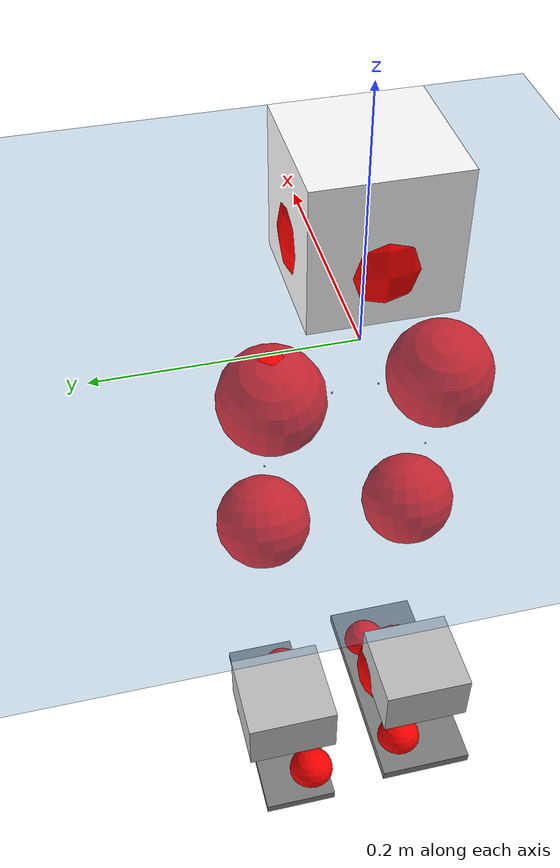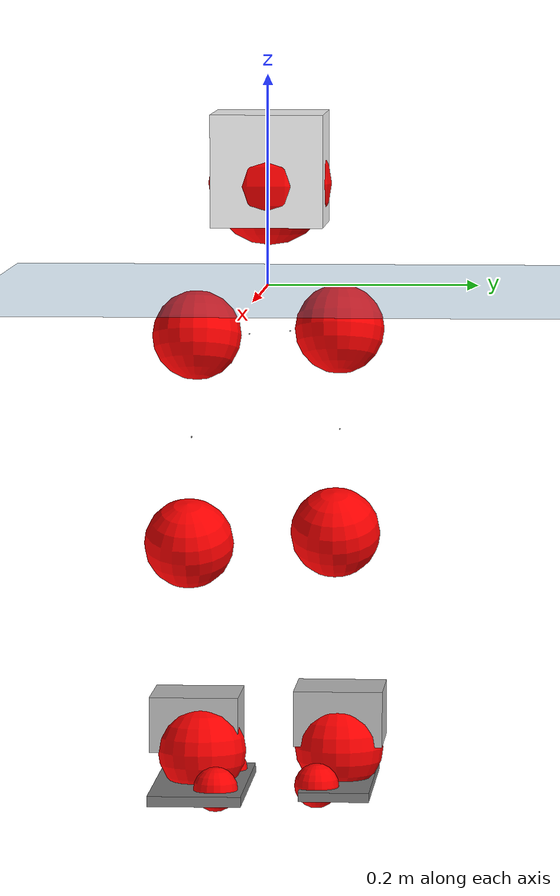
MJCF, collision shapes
<mujoco model="pi_12dof_release_v1">
  <compiler angle="radian" assetdir="assets" balanceinertia="true" inertiafromgeom="false"/>

  <option timestep="0.005" density="1.2" viscosity="2e-05"/>

  <size nkey="1"/>

  <visual>
    <quality shadowsize="8192"/>
    <map shadowclip="0.5"/>
  </visual>

  <default>
    <default class="/">
      <joint armature="0.01" damping="0.01" frictionloss="0.01"/>
      <geom contype="0" conaffinity="0" group="1" solref="-1000 -80"/>
      <site size="0.01 0.005 0.005" group="5"/>
      <general forcelimited="true" biastype="affine" gainprm="20" biasprm="0 -20 -0.5"/>
      <default class="foot">
        <geom size="0.0845 0.036 0.005" type="box" condim="6" group="4" priority="1" friction="0.9 0.2 0.2" solimp="0.015 1 0.005"/>
      </default>
      <default class="reward_collision_sphere">
        <geom group="5" rgba="1 0 0 1"/>
      </default>
    </default>
  </default>

  <asset>
    <texture type="skybox" colorspace="auto" name="//unnamed_texture_0" builtin="gradient" rgb1="0.95 0.95 0.95" rgb2="0.95 0.95 0.95" width="100" height="600"/>
    <texture type="2d" colorspace="auto" name="texplane" builtin="checker" rgb1="0.345 0.575 0.748" rgb2="0.345 0.575 0.748" markrgb="1 1 1" width="512" height="512"/>
    <material name="MatPlane" class="/" texture="texplane" texuniform="true" texrepeat="2 2" specular="0.9"/>
    <mesh name="baselink_1" class="/" file="baselink_1.STL"/>
    <mesh name="r_hip_pitch_link" class="/" file="r_hip_pitch_link.STL"/>
    <mesh name="r_hip_roll_link" class="/" file="r_hip_roll_link.STL"/>
    <mesh name="r_thigh_link" class="/" file="r_thigh_link.STL"/>
    <mesh name="r_calf_link" class="/" file="r_calf_link.STL"/>
    <mesh name="r_ankle_pitch_link" class="/" file="r_ankle_pitch_link.STL"/>
    <mesh name="r_ankle_roll_link" class="/" file="r_ankle_roll_link.STL"/>
    <mesh name="l_hip_pitch_link" class="/" file="l_hip_pitch_link.STL"/>
    <mesh name="l_hip_roll_link" class="/" file="l_hip_roll_link.STL"/>
    <mesh name="l_thigh_link" class="/" file="l_thigh_link.STL"/>
    <mesh name="l_calf_link" class="/" file="l_calf_link.STL"/>
    <mesh name="l_ankle_pitch_link" class="/" file="l_ankle_pitch_link.STL"/>
    <mesh name="l_ankle_roll_link" class="/" file="l_ankle_roll_link.STL"/>
  </asset>

  <worldbody>
    <geom name="floor" class="/" size="100 100 0.125" type="plane" group="0" material="MatPlane"/>
    <light name="toplight_shadow" class="/" pos="0 0 5" dir="0.0990148 0.0990148 -0.990148" type="directional" ambient="0.04 0.04 0.04" diffuse="0.55 0.55 0.55" specular="0.12 0.12 0.12"/>
    <light name="toplight_fill" class="/" pos="0 0 5" dir="0.0990148 0.0990148 -0.990148" type="directional" castshadow="false" ambient="0.04 0.04 0.04" diffuse="0.3 0.3 0.3" specular="0.08 0.08 0.08"/>
    <body name="trunk" pos="0.000245499 0.00201447 -0.00152734" quat="1 -7.20532e-05 0.000108514 -0.000219391">
      <inertial pos="0.000821348 0.000771791 0.0576784" quat="0.698636 0.0135234 0.00628639 0.715321" mass="2.69039" diaginertia="0.00583984 0.00494159 0.021747"/>
      <joint name="//unnamed_joint_0" type="free"/>
      <geom name="//unnamed_geom_1" class="/" type="mesh" density="0" rgba="1 1 1 1" mesh="baselink_1"/>
      <geom name="//unnamed_geom_2" class="/" size="0.0532549 0.0532549 0.0532549" pos="0 0 0.112122" type="box" rgba="1 1 1 1"/>
      <geom name="//unnamed_geom_3" class="reward_collision_sphere" size="0.0585804" pos="0 0 0.0981068"/>
      <site name="imu" class="/" pos="0.00580397 0.0236787 -0.0118519" size="0.010651"/>
      <camera name="track" class="/" pos="0 -1.77421 0" quat="0.707107 0.707107 0 0" mode="trackcom"/>
      <camera name="ego_camera" class="/" pos="0.0679995 0 0.252275" quat="-0.5 -0.5 0.5 0.5"/>
      <body name="r_hip_pitch_link" pos="0.00131551 -0.0195288 -0.0456487" quat="0.991934 -0.000157713 -0.126751 0.00067607">
        <inertial pos="-0.000633802 -0.0503652 -0.00151077" quat="-0.0197376 0.704855 -0.0295647 0.70846" mass="0.429508" diaginertia="6.40392e-05 5.12609e-05 0.000439371"/>
        <joint name="r_hip_pitch_joint" class="/" pos="0 0 0" axis="0.00680122 -0.999974 0.00239097" stiffness="0.0141201" range="-1.75858 1.2761" armature="0.00998671" damping="0.0338133" frictionloss="0.0120246"/>
        <geom name="//unnamed_geom_4" class="/" type="mesh" density="0" rgba="0.75294 0.75294 0.75294 1" mesh="r_hip_pitch_link"/>
        <geom name="//unnamed_geom_5" class="/" size="0.000532549 0.000532549 0.000532549" type="box" rgba="0.75294 0.75294 0.75294 1"/>
        <body name="r_hip_roll_link" pos="0.0013712 -0.0502919 -0.00162176" quat="1 6.94889e-05 -0.000230336 -6.16875e-05">
          <inertial pos="-0.000803682 0.0031226 -0.0805795" quat="0.701614 -0.0684826 -0.0852017 0.704122" mass="0.458511" diaginertia="0.000211741 0.000151303 0.000719389"/>
          <joint name="r_hip_roll_joint" class="/" pos="0 0 0" axis="-0.999999 0.00164383 9.94294e-05" range="-0.0846663 0.441273" armature="0.0120389" damping="0" frictionloss="0.00932379"/>
          <geom name="//unnamed_geom_6" class="/" type="mesh" density="0" rgba="0.75294 0.75294 0.75294 1" mesh="r_hip_roll_link"/>
          <geom name="//unnamed_geom_7" class="/" size="0.000532549 0.000532549 0.000532549" type="box" rgba="0.75294 0.75294 0.75294 1"/>
          <geom name="//unnamed_geom_8" class="reward_collision_sphere" size="0.0426039"/>
          <body name="r_thigh_link" pos="-0.00520644 -0.00357535 -0.0973533" quat="1 1.95201e-07 0.000264404 0.00054302">
            <inertial pos="-0.00186316 -0.000135189 -0.0665245" quat="0.737723 0.675102 -0.0015688 -0.000642895" mass="0.13036" diaginertia="7.60394e-05 5.00156e-05 0.00030999"/>
            <joint name="r_thigh_joint" class="/" pos="0 0 0" axis="-0.00289205 -0.00141906 -0.999995" range="-0.251349 0.628915" armature="0.0119936" damping="0.00112938" frictionloss="0.01321"/>
            <geom name="//unnamed_geom_9" class="/" type="mesh" density="0" rgba="0.75294 0.75294 0.75294 1" mesh="r_thigh_link"/>
            <geom name="//unnamed_geom_10" class="/" size="0.000532549 0.000532549 0.000532549" type="box" rgba="0.75294 0.75294 0.75294 1"/>
            <body name="r_calf_link" pos="0.00179636 -0.000466887 -0.102117" quat="0.94764 1.94651e-05 0.319342 4.91279e-05">
              <inertial pos="-0.00338378 -0.00101732 -0.0984909" quat="0.999925 0.011912 -6.88372e-05 0.00275249" mass="0.946582" diaginertia="0.00202791 0.00188813 0.000929689"/>
              <joint name="r_calf_joint" class="/" pos="0 0 0" axis="0.00961672 -0.999889 0.0113811" stiffness="0.0131423" range="-1.70751 0.638918" armature="0.0112156" damping="0.0180207" frictionloss="0.0108606"/>
              <geom name="//unnamed_geom_11" class="/" type="mesh" density="0" rgba="0.75294 0.75294 0.75294 1" mesh="r_calf_link"/>
              <geom name="//unnamed_geom_12" class="/" size="0.000532549 0.000532549 0.000532549" type="box" rgba="0.75294 0.75294 0.75294 1"/>
              <geom name="//unnamed_geom_13" class="reward_collision_sphere" size="0.0426039"/>
              <body name="r_ankle_pitch_link" pos="0.00166201 0.00130832 -0.194745" quat="0.980003 0.000493682 -0.198978 -0.0012961">
                <inertial pos="0.00544232 0.00308257 0.00352202" quat="0.0120495 0.698186 -0.0215819 0.71549" mass="0.210174" diaginertia="0.000177524 0.000116751 0.000620977"/>
                <joint name="r_ankle_pitch_joint" class="/" pos="0 0 0" axis="0.00881522 -0.999942 -0.00626035" stiffness="0.00843797" range="-1.30889 0.416805" armature="0.0108175" damping="0.0109632" frictionloss="0.00952532"/>
                <geom name="//unnamed_geom_14" class="/" type="mesh" density="0" rgba="0.75294 0.75294 0.75294 1" mesh="r_ankle_pitch_link"/>
                <geom name="//unnamed_geom_15" class="/" size="0.0415388 0.0426039 0.0266274" type="box" rgba="0.75294 0.75294 0.75294 1"/>
                <body name="r_ankle_roll_link" pos="0.0728668 0.00689967 0.00232316" quat="1 0.00071972 -0.00023761 0.000254007">
                  <inertial pos="-0.0198999 8.20174e-05 -0.0253391" quat="0.56279 0.42989 0.437174 0.554383" mass="0.673837" diaginertia="0.000756722 0.000568098 0.00168359"/>
                  <joint name="r_ankle_roll_joint" class="/" pos="0 0 0" axis="-0.999908 0.0126173 0.00502176" stiffness="0.00841676" range="-0.146717 0.194382" armature="0.0125022" damping="0" frictionloss="0.0100218"/>
                  <geom name="//unnamed_geom_16" class="/" type="mesh" density="0" rgba="0.75294 0.75294 0.75294 1" mesh="r_ankle_roll_link"/>
                  <geom name="//unnamed_geom_17" class="/" type="mesh" rgba="0.75294 0.75294 0.75294 1" mesh="r_ankle_roll_link"/>
                  <geom name="right_foot" class="foot" size="0.100375 0.0443397 0.00493319" pos="-0.0462396 0 -0.0616671"/>
                  <geom name="//unnamed_geom_19" class="reward_collision_sphere" size="0.0426039" pos="-0.045333 0 -0.0280305"/>
                  <geom name="//unnamed_geom_20" class="reward_collision_sphere" size="0.021302" pos="0.0135999 0.0177421 -0.056061"/>
                  <geom name="//unnamed_geom_21" class="reward_collision_sphere" size="0.021302" pos="-0.108799 0.0177421 -0.056061"/>
                  <site name="right_foot" class="foot" pos="-0.0462396 0 -0.0616671" size="0.010651"/>
                </body>
              </body>
            </body>
          </body>
        </body>
      </body>
      <body name="l_hip_pitch_link" pos="-0.00321094 0.0189277 -0.0429106" quat="0.99221 -0.000477377 -0.124575 0.000516661">
        <inertial pos="0.000305291 0.0461326 0.00244247" quat="-0.0304659 0.706693 0.0247382 0.706431" mass="0.444503" diaginertia="7.49467e-05 5.63621e-05 0.000539831"/>
        <joint name="l_hip_pitch_joint" class="/" pos="0 0 0" axis="-0.00363111 0.999993 0.000971348" stiffness="4.01584e-05" range="-1.25786 1.774" armature="0.0102527" damping="0.0214205" frictionloss="0.00953171"/>
        <geom name="//unnamed_geom_22" class="/" type="mesh" density="0" rgba="0.75294 0.75294 0.75294 1" mesh="l_hip_pitch_link"/>
        <geom name="//unnamed_geom_23" class="/" size="0.000532549 0.000532549 0.000532549" type="box" rgba="0.75294 0.75294 0.75294 1"/>
        <body name="l_hip_roll_link" pos="0.000873449 0.0471513 0.00220354" quat="1 -0.000787275 -0.000107 7.02481e-05">
          <inertial pos="0.000729975 0.00307804 -0.0806188" quat="0.696172 -0.087341 -0.0773868 0.708327" mass="0.467613" diaginertia="0.000218189 0.000156091 0.000738157"/>
          <joint name="l_hip_roll_joint" class="/" pos="0 0 0" axis="-0.999995 0.00163837 -0.00261945" stiffness="0.00702076" range="-0.434184 0.0955599" armature="0.00994457" damping="0.0263099" frictionloss="0.0106819"/>
          <geom name="//unnamed_geom_24" class="/" type="mesh" density="0" rgba="0.75294 0.75294 0.75294 1" mesh="l_hip_roll_link"/>
          <geom name="//unnamed_geom_25" class="/" size="0.000532549 0.000532549 0.000532549" type="box" rgba="0.75294 0.75294 0.75294 1"/>
          <geom name="//unnamed_geom_26" class="reward_collision_sphere" size="0.0426039"/>
          <body name="l_thigh_link" pos="-0.000513404 0.0016909 -0.0962122" quat="1 5.30247e-05 -6.29735e-06 -6.79251e-05">
            <inertial pos="0.00108655 -0.00194215 -0.0663823" quat="0.671311 0.741171 0.00237395 -0.00130501" mass="0.135842" diaginertia="7.62932e-05 5.28986e-05 0.000300677"/>
            <joint name="l_thigh_joint" class="/" pos="0 0 0" axis="0.00245181 0.000126308 -0.999997" stiffness="0.0209688" range="-0.614409 0.272602" armature="0.0109797" damping="0.0101953" frictionloss="0.00969527"/>
            <geom name="//unnamed_geom_27" class="/" type="mesh" density="0" rgba="0.75294 0.75294 0.75294 1" mesh="l_thigh_link"/>
            <geom name="//unnamed_geom_28" class="/" size="0.000532549 0.000532549 0.000532549" type="box" rgba="0.75294 0.75294 0.75294 1"/>
            <body name="l_calf_link" pos="-0.000327387 -0.00261678 -0.0989313" quat="0.947736 0.000174175 0.319055 -0.000942359">
              <inertial pos="-0.000282725 0.000792877 -0.0976595" quat="0.999988 0.00326326 9.24674e-06 0.00364489" mass="1.05956" diaginertia="0.00220522 0.00196146 0.000997919"/>
              <joint name="l_calf_joint" class="/" pos="0 0 0" axis="-7.33757e-05 0.999994 -0.00339062" stiffness="0.00182548" range="-0.737843 1.59718" armature="0.010632" damping="0.01188" frictionloss="0.0119602"/>
              <geom name="//unnamed_geom_29" class="/" type="mesh" density="0" rgba="0.75294 0.75294 0.75294 1" mesh="l_calf_link"/>
              <geom name="//unnamed_geom_30" class="/" size="0.000532549 0.000532549 0.000532549" type="box" rgba="0.75294 0.75294 0.75294 1"/>
              <geom name="//unnamed_geom_31" class="reward_collision_sphere" size="0.0426039"/>
              <body name="l_ankle_pitch_link" pos="0.00243411 0.000566453 -0.19991" quat="0.980085 9.6869e-05 -0.198578 8.44901e-05">
                <inertial pos="0.00360828 -0.00100229 0.000230724" quat="-0.0024094 0.707137 0.00218368 0.707069" mass="0.220364" diaginertia="0.00019647 0.000121979 0.000648943"/>
                <joint name="l_ankle_pitch_joint" class="/" pos="0 0 0" axis="0.0006181 0.999999 0.00158317" stiffness="0.00118817" range="-0.450542 1.26497" armature="0.0112168" damping="0" frictionloss="0.0119961"/>
                <geom name="//unnamed_geom_32" class="/" type="mesh" density="0" rgba="0.75294 0.75294 0.75294 1" mesh="l_ankle_pitch_link"/>
                <geom name="//unnamed_geom_33" class="/" size="0.0415388 0.0426039 0.0266274" type="box" rgba="0.75294 0.75294 0.75294 1"/>
                <body name="l_ankle_roll_link" pos="0.0646112 7.83776e-05 -0.00165519" quat="0.999999 0.00032018 0.000386602 -0.00116482">
                  <inertial pos="-0.020483 6.65483e-05 -0.0193258" quat="0.558489 0.433089 0.425862 0.564948" mass="0.630435" diaginertia="0.000670128 0.00055688 0.00154212"/>
                  <joint name="l_ankle_roll_joint" class="/" pos="0 0 0" axis="-0.999941 0.0105416 -0.00278038" range="-0.109739 0.149309" armature="0.0102518" damping="0.0118348" frictionloss="0.0107508"/>
                  <geom name="//unnamed_geom_34" class="/" type="mesh" density="0" rgba="0.75294 0.75294 0.75294 1" mesh="l_ankle_roll_link"/>
                  <geom name="//unnamed_geom_35" class="/" type="mesh" rgba="0.75294 0.75294 0.75294 1" mesh="l_ankle_roll_link"/>
                  <geom name="left_foot" class="foot" size="0.0933799 0.0336001 0.00441057" pos="-0.0462396 0 -0.0616671"/>
                  <geom name="//unnamed_geom_37" class="reward_collision_sphere" size="0.0426039" pos="-0.045333 0 -0.0280305"/>
                  <geom name="//unnamed_geom_38" class="reward_collision_sphere" size="0.021302" pos="0.0135999 -0.0177421 -0.056061"/>
                  <geom name="//unnamed_geom_39" class="reward_collision_sphere" size="0.021302" pos="-0.108799 -0.0177421 -0.056061"/>
                  <site name="left_foot" class="foot" pos="-0.0462396 0 -0.0616671" size="0.010651"/>
                </body>
              </body>
            </body>
          </body>
        </body>
      </body>
    </body>
  </worldbody>

  <contact>
    <pair class="/" geom1="floor" geom2="right_foot" name="//unnamed_contact_1"/>
    <pair class="/" geom1="floor" geom2="left_foot" name="//unnamed_contact_0"/>
  </contact>

  <actuator>
    <general name="r_hip_pitch_joint" class="/" joint="r_hip_pitch_joint" forcerange="-22.2597 22.2597" gainprm="21.7566" biasprm="0 -21.7566 -0.542915"/>
    <general name="r_hip_roll_joint" class="/" joint="r_hip_roll_joint" forcerange="-24.3369 24.3369" gainprm="21.7566" biasprm="0 -21.7566 -0.542915"/>
    <general name="r_thigh_joint" class="/" joint="r_thigh_joint" forcerange="-23.6162 23.6162" gainprm="21.7566" biasprm="0 -21.7566 -0.542915"/>
    <general name="r_calf_joint" class="/" joint="r_calf_joint" forcerange="-20.2239 20.2239" gainprm="21.7566" biasprm="0 -21.7566 -0.542915"/>
    <general name="r_ankle_pitch_joint" class="/" joint="r_ankle_pitch_joint" forcerange="-24.2911 24.2911" gainprm="21.7566" biasprm="0 -21.7566 -0.542915"/>
    <general name="r_ankle_roll_joint" class="/" joint="r_ankle_roll_joint" forcerange="-23.3709 23.3709" gainprm="21.7566" biasprm="0 -21.7566 -0.542915"/>
    <general name="l_hip_pitch_joint" class="/" joint="l_hip_pitch_joint" forcerange="-24.5905 24.5905" gainprm="21.7566" biasprm="0 -21.7566 -0.542915"/>
    <general name="l_hip_roll_joint" class="/" joint="l_hip_roll_joint" forcerange="-20.8627 20.8627" gainprm="21.7566" biasprm="0 -21.7566 -0.542915"/>
    <general name="l_thigh_joint" class="/" joint="l_thigh_joint" forcerange="-24.6874 24.6874" gainprm="21.7566" biasprm="0 -21.7566 -0.542915"/>
    <general name="l_calf_joint" class="/" joint="l_calf_joint" forcerange="-23.4823 23.4823" gainprm="21.7566" biasprm="0 -21.7566 -0.542915"/>
    <general name="l_ankle_pitch_joint" class="/" joint="l_ankle_pitch_joint" forcerange="-22.9798 22.9798" gainprm="21.7566" biasprm="0 -21.7566 -0.542915"/>
    <general name="l_ankle_roll_joint" class="/" joint="l_ankle_roll_joint" forcerange="-18.0923 18.0923" gainprm="21.7566" biasprm="0 -21.7566 -0.542915"/>
  </actuator>

  <sensor>
    <gyro site="imu" name="imu_angular_velocity"/>
    <velocimeter site="imu" name="imu_linear_velocity"/>
    <framelinvel objtype="site" objname="left_foot" name="left_foot_global_linear_velocity"/>
    <framelinvel objtype="site" objname="right_foot" name="right_foot_global_linear_velocity"/>
  </sensor>

  <keyframe>
    <key name="home" qpos="0 0 0.291 1 0 0 0 0.4 0 0 -0.8 0.4 0 -0.4 0 0 0.8 -0.4 0"/>
  </keyframe>
</mujoco>
